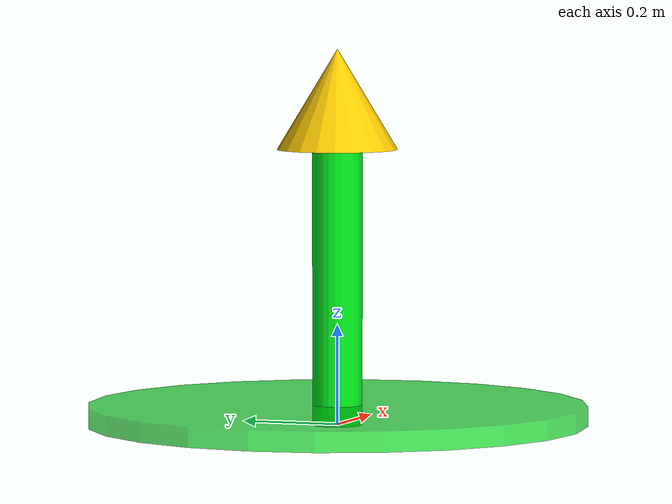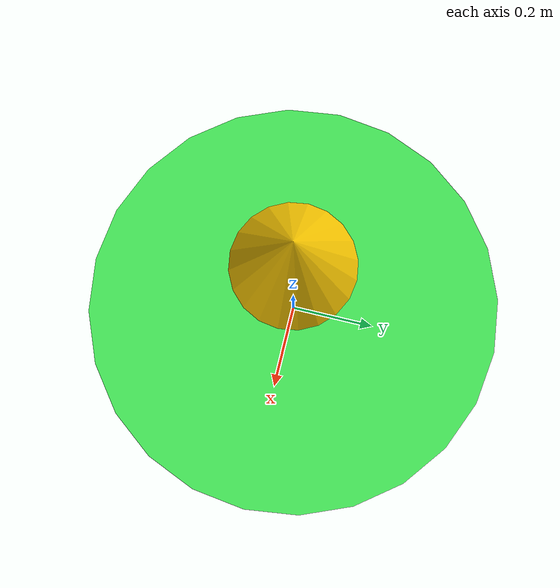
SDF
<?xml version="1.0"?>
<sdf version="1.6">
<model name="Target">
  <static>true</static>
  <link name="link">
    <!-- Base verte -->
    <visual name="base">
      <pose>0 0 0.02 0 0 0</pose>
      <geometry>
        <cylinder><radius>0.5</radius><length>0.04</length></cylinder>
      </geometry>
      <material>
        <ambient>0 0.9 0.1 0.7</ambient>
        <diffuse>0 0.9 0.1 0.7</diffuse>
        <emissive>0 0.3 0 1</emissive>
      </material>
    </visual>
    <!-- Flèche verticale -->
    <visual name="arrow">
      <pose>0 0 0.3 0 0 0</pose>
      <geometry>
        <cylinder><radius>0.05</radius><length>0.6</length></cylinder>
      </geometry>
      <material>
        <ambient>0 0.9 0.1 1</ambient>
        <diffuse>0 0.9 0.1 1</diffuse>
        <emissive>0 0.5 0 1</emissive>
      </material>
    </visual>
    <!-- Pointe de flèche -->
    <visual name="arrow_tip">
      <pose>0 0 0.65 0 0 0</pose>
      <geometry>
        <cone><radius>0.12</radius><length>0.2</length></cone>
      </geometry>
      <material>
        <ambient>1 0.8 0 1</ambient>
        <diffuse>1 0.8 0 1</diffuse>
        <emissive>0.5 0.4 0 1</emissive>
      </material>
    </visual>
    <collision name="col">
      <pose>0 0 0.02 0 0 0</pose>
      <geometry><cylinder><radius>0.5</radius><length>0.04</length></cylinder></geometry>
    </collision>
  </link>
</model>
</sdf>
